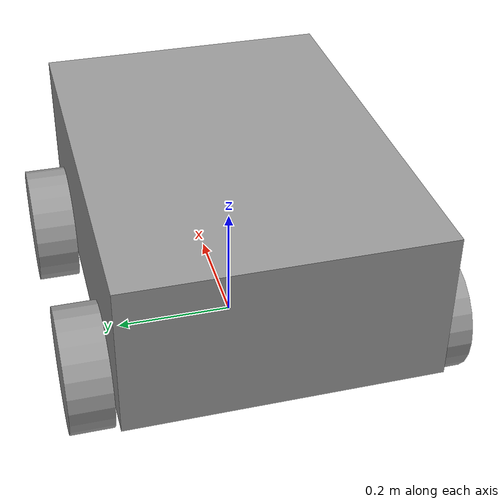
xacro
<?xml version="1.0"?>
<robot xmlns:xacro="http://www.ros.org/wiki/xacro">

    <xacro:property name="wheel_radius" value="0.1" />
    <xacro:property name="wheel_lenght" value="0.07" />
    <xacro:property name="base_lenght" value="0.7" />
    <xacro:property name="base_width" value="0.5" />
    <xacro:property name="base_height" value="0.25" />
    <xacro:property name="base_xyz" value="0 0 ${base_height / 2}" />
    <xacro:property name="wheel_rpy" value="${pi / 2.0} 0 0" />

    <link name="base_footprint" />

    <link name="base_link">
        <visual>
            <geometry>
                <box size="${base_lenght} ${base_width} ${base_height}" />
            </geometry>
            <origin xyz="${base_xyz}" rpy="0 0 0" />
            <material name="grey" />
        </visual>
        <collision>
            <geometry>
                <box size="${base_lenght} ${base_width} ${base_height}" />
            </geometry>
            <origin xyz="${base_xyz}" rpy="0 0 0" />
        </collision>
        <xacro:box_inertia mass="15.0" l="${2*base_lenght}" w="${2*base_width}" h="${2*base_height}" xyz="${base_xyz}" rpy="0 0 0" />
    </link>

    <joint name="footprint_base_joint" type="fixed">
        <parent link="base_footprint" />
        <child link="base_link" />
        <origin xyz="0 0 ${wheel_radius}" rpy="0 0 0" />
    </joint>

    <xacro:macro name="create_wheel_link" params="prefix">

    <link name="${prefix}_wheel_link">
        <visual>
            <geometry>
                <cylinder radius="${wheel_radius}" length="${wheel_lenght}" />
            </geometry>
            <origin xyz="0 0 0" rpy="${wheel_rpy}" />
            <material name="grey" />
        </visual>
        <collision>
            <geometry>
                <cylinder radius="${wheel_radius}" length="${wheel_lenght}" />
            </geometry>
            <origin xyz="0 0 0" rpy="${wheel_rpy}" />
        </collision>
        <xacro:wheel_inertia mass="3.0" l="${2*wheel_lenght}" r="${2*wheel_radius}" xyz="0 0 0" rpy="${wheel_rpy}" />
    </link>

    </xacro:macro>

    <xacro:create_wheel_link prefix="rear_left" />

    <joint name="rear_left_wheel_joint" type="continuous">
        <parent link="base_link" />
        <child link="rear_left_wheel_link" />
        <origin xyz="${-base_lenght / 3.5} ${base_width / 2 + (wheel_lenght / 2)} 0" rpy="0 0 0" />
        <axis xyz="0 1 0" />
        <limit velocity="100.0" effort="100.0" />
    </joint>

    <xacro:create_wheel_link prefix="rear_right" />

    <joint name="rear_right_wheel_joint" type="continuous">
        <parent link="base_link" />
        <child link="rear_right_wheel_link" />
        <origin xyz="${-base_lenght / 3.5} ${-(base_width / 2 + (wheel_lenght / 2))} 0" rpy="0 0 0" />
         <axis xyz="0 1 0" />
    </joint>

    <xacro:create_wheel_link prefix="front_left" />

    <joint name="front_left_wheel_joint" type="continuous">
        <parent link="base_link" />
        <child link="front_left_wheel_link" />
        <origin xyz="${base_lenght / 3.5} ${base_width / 2 + (wheel_lenght / 2)} 0" rpy="0 0 0" />
        <axis xyz="0 1 0" />
    </joint>

    <xacro:create_wheel_link prefix="front_right" />

    <joint name="front_right_wheel_joint" type="continuous">
        <parent link="base_link" />
        <child link="front_right_wheel_link" />
        <origin xyz="${base_lenght / 3.5} ${-(base_width / 2 + (wheel_lenght / 2))} 0" rpy="0 0 0" />
         <axis xyz="0 1 0" />
    </joint>

</robot>
